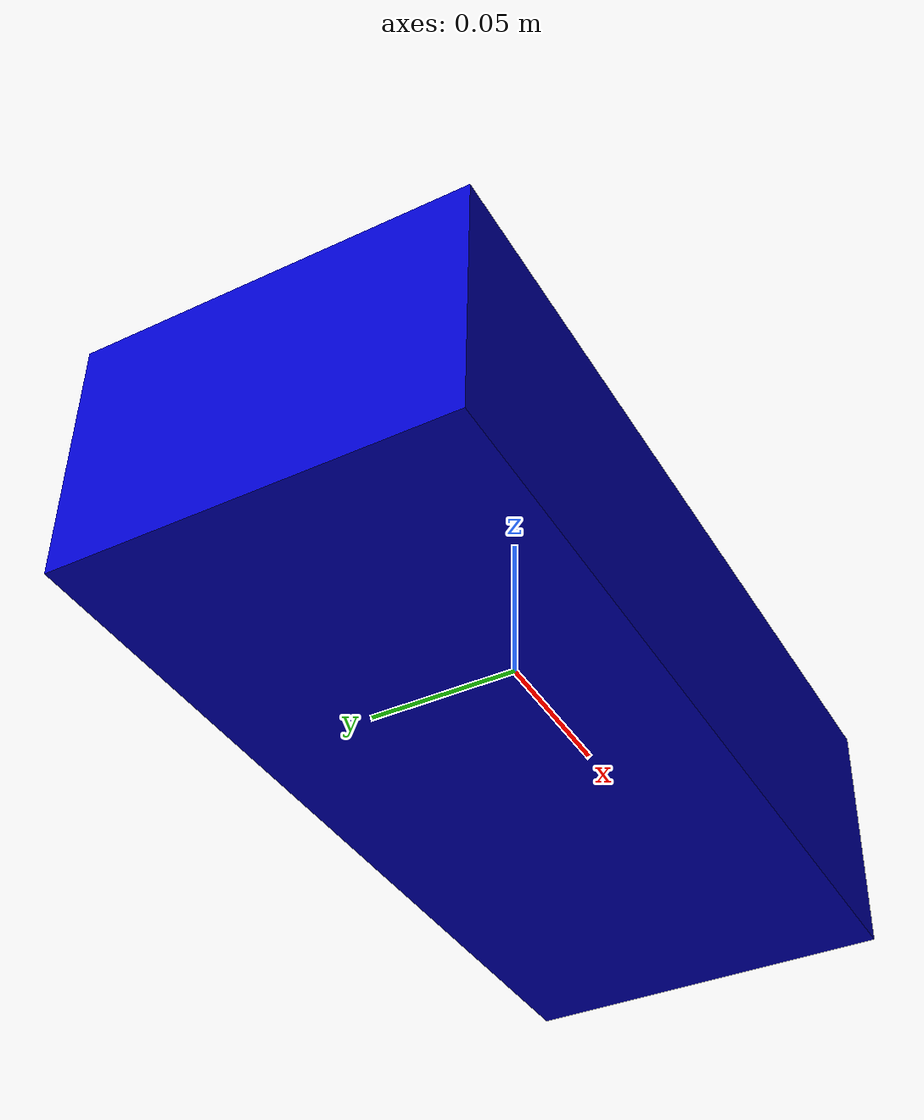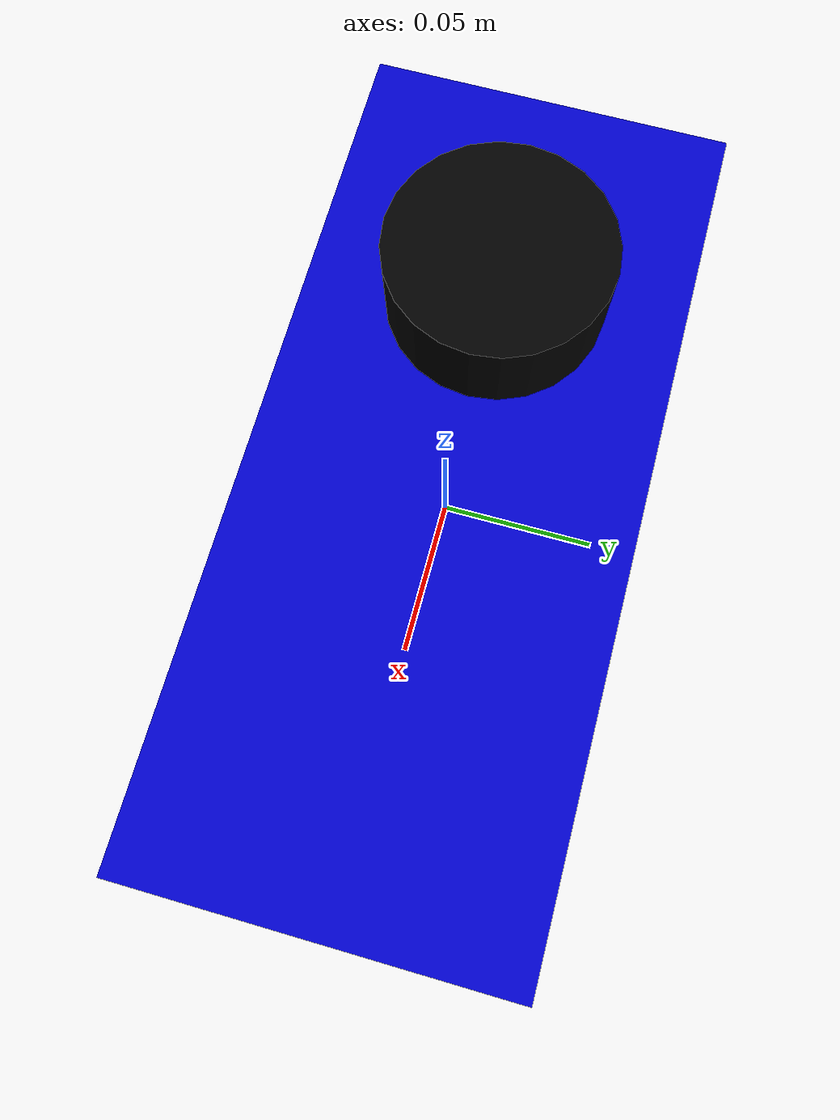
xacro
<?xml version="1.0"?>
<robot name="ackermann_car" xmlns:xacro="http://ros.org/wiki/xacro">

  <xacro:property name="chassis_length" value="0.27"/> <xacro:property name="chassis_width" value="0.12"/>  <xacro:property name="chassis_height" value="0.08"/> <xacro:property name="lidar_radius" value="0.035"/>
  <xacro:property name="lidar_height" value="0.03"/>

  <xacro:property name="lidar_x_offset" value="-0.06"/>

  <xacro:property name="lidar_z_offset" value="${chassis_height/2 + lidar_height/2}"/>
  <xacro:property name="ground_clearance" value="0.03"/>

  <material name="blue"><color rgba="0 0 0.8 1"/></material>
  <material name="black"><color rgba="0 0 0 1"/></material>

  <link name="base_link">
    <visual>
      <geometry>
        <box size="${chassis_length} ${chassis_width} ${chassis_height}"/>
      </geometry>
      <material name="blue"/>
      <origin xyz="0 0 0" rpy="0 0 0"/>
    </visual>
    <collision>
      <geometry>
        <box size="${chassis_length} ${chassis_width} ${chassis_height}"/>
      </geometry>
      <origin xyz="0 0 0" rpy="0 0 0"/>
    </collision>
  </link>

  <link name="base_footprint"/>

  <joint name="base_joint" type="fixed">
    <parent link="base_link"/>
    <child link="base_footprint"/>
    <origin xyz="0 0 ${-(chassis_height/2 + ground_clearance)}" rpy="0 0 0"/>
  </joint>

  <link name="laser_frame">
    <visual>
      <geometry>
        <cylinder radius="${lidar_radius}" length="${lidar_height}"/>
      </geometry>
      <material name="black"/>
      <origin xyz="0 0 0" rpy="0 0 0"/>
    </visual>
    <collision>
      <geometry>
        <cylinder radius="${lidar_radius}" length="${lidar_height}"/>
      </geometry>
      <origin xyz="0 0 0" rpy="0 0 0"/>
    </collision>
  </link>

  <joint name="lidar_joint" type="fixed">
    <parent link="base_link"/>
    <child link="laser_frame"/>
    <origin xyz="${lidar_x_offset} 0 ${lidar_z_offset}" rpy="0 0 0"/>
  </joint>

</robot>
